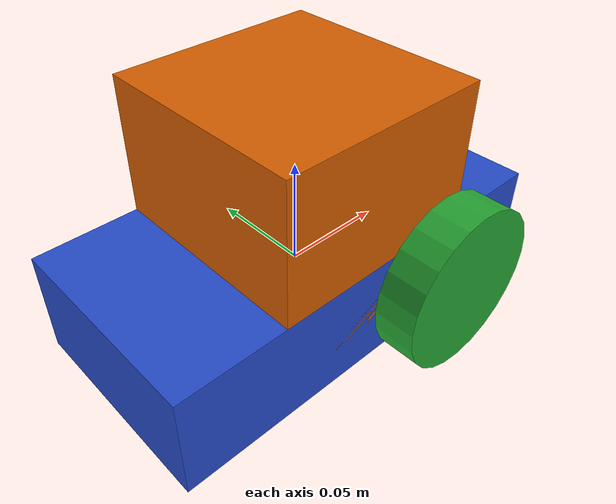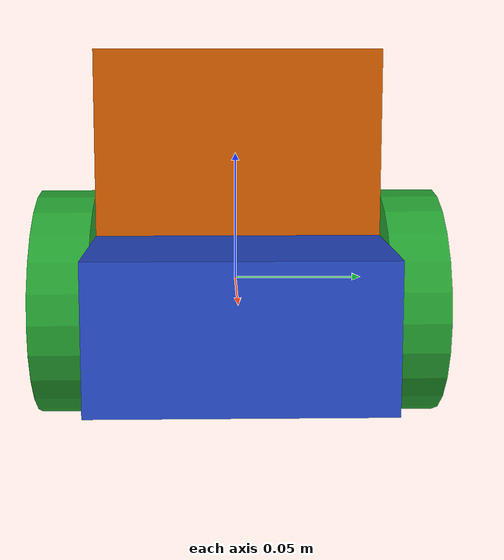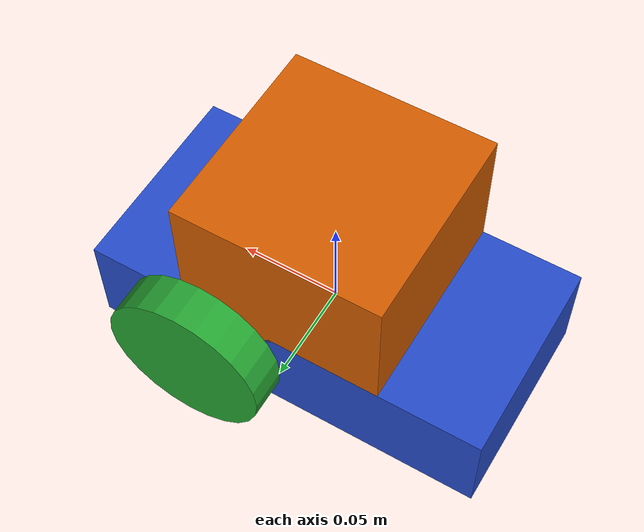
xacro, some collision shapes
<?xml version='1.0'?>

<robot name="my_robot" xmlns:xacro="http://www.ros.org/wiki/xacro">

  <xacro:include filename="$(find my_robot)/urdf/my_robot.gazebo" />

  <link name="robot_footprint"></link>

  <joint name="robot_footprint_joint" type="fixed">
    <origin xyz="0 0 0" rpy="0 0 0" />
    <parent link="robot_footprint"/>
    <child link="chassis" />
  </joint>

  <!-- CHASSIS -->
  <link name='chassis'>
    <pose>0 0 0.02 0 0 0</pose>

    <inertial>
      <mass value="15.0"/>
      <origin xyz="0.0 0 0" rpy=" 0 0 0"/>
      <inertia
          ixx="0.1" ixy="0" ixz="0"
          iyy="0.1" iyz="0"
          izz="0.1"
      />
    </inertial>

    <collision name='collision'>
      <origin xyz="0 0 0" rpy=" 0 0 0"/>
      <geometry>
        <box size="0.2 0.1 0.05"/>
      </geometry>
    </collision>

    <visual name='chassis_visual'>
      <origin xyz="0 0 0" rpy=" 0 0 0"/>
      <geometry>
        <box size="0.2 0.1 0.05"/>
      </geometry>
    </visual>

    <visual name='caster_visual'>
      <origin xyz="-0.07 0 -0.025" rpy=" 0 0 0"/>
      <geometry>
        <sphere radius="0.025"/>
      </geometry>
    </visual>

    <collision name='caster_collision'>
      <origin xyz="-0.07 0 -0.025" rpy=" 0 0 0"/>
      <geometry>
        <sphere radius="0.0249"/>
      </geometry>
    </collision>

  </link>

  <!-- LEFT WHEEL -->
  <link name='left_wheel'>
    <pose>0 0 0 0 0 0</pose>

    <inertial>
      <mass value="0.02"/>
      <origin xyz="0.0 0 0" rpy="0 1.5707 1.5707"/>
      <inertia
          ixx="0.1" ixy="0" ixz="0"
          iyy="0.1" iyz="0"
          izz="0.1"
      />
    </inertial>

    <collision name='left_wheel_collision'>
      <origin xyz="0 0 0" rpy="0 1.5707 1.5707"/>
      <geometry>
        <cylinder radius =".04" length  =".02" />
      </geometry>
    </collision>

    <visual name='left_wheel_visual'>
      <origin xyz="0 0 0" rpy="0 1.5707 1.5707"/>
      <geometry>
        <cylinder radius =".04" length  =".02" />
      </geometry>
    </visual>

  </link>

  <joint type="continuous" name="left_wheel_hinge">
    <origin xyz="0.04 0.06 0" rpy="0 0 0"/>
    <child link="left_wheel"/>
    <parent link="chassis"/>
    <axis xyz="0 1 0" rpy="0 0 0"/>
    <limit effort="10000" velocity="1000"/>
    <dynamics damping="1.0" friction="1.0"/>
  </joint>

  <!-- RIGHT WHEEL -->
  <link name='right_wheel'>
    <pose>0 0 0 0 0 0</pose>

    <inertial>
      <mass value="0.02"/>
      <origin xyz="0.0 0 0" rpy="0 1.5707 1.5707"/>
      <inertia
          ixx="0.1" ixy="0" ixz="0"
          iyy="0.1" iyz="0"
          izz="0.1"
      />
    </inertial>

    <collision name='right_wheel_collision'>
      <origin xyz="0 0 0" rpy="0 1.5707 1.5707"/>
      <geometry>
        <cylinder radius =".04" length  =".02" />
      </geometry>
    </collision>

    <visual name='right_wheel_visual'>
      <origin xyz="0 0 0" rpy="0 1.5707 1.5707"/>
      <geometry>
        <cylinder radius =".04" length  =".02" />
      </geometry>
    </visual>

  </link>

  <joint type="continuous" name="right_wheel_hinge">
    <origin xyz="0.04 -0.06 0" rpy="0 0 0"/>
    <child link="right_wheel"/>
    <parent link="chassis"/>
    <axis xyz="0 1 0" rpy="0 0 0"/>
    <limit effort="10000" velocity="1000"/>
    <dynamics damping="1.0" friction="1.0"/>
  </joint>

  <!-- CAMERA -->
  <link name='camera'>
    <pose>0 0 0 0 0 0</pose>

    <inertial>
      <mass value="0.002"/>
      <origin xyz="0.0 0 0" rpy="0 0 0"/>
      <inertia
          ixx="1e-6" ixy="0" ixz="0"
          iyy="1e-6" iyz="0"
          izz="1e-6"
      />
      <box_inertia m="0.1" x="0.05" y="0.05" z="0.05"/>
    </inertial>

    <collision name='camera_collision'>
      <origin xyz="0 0 0" rpy="0 0 0"/>
      <geometry>
        <box size=".005 .005 .005"/>
      </geometry>
    </collision>

    <visual name='camera_visual'>
      <origin xyz="0 0 0" rpy="0 0 0"/>
      <geometry>
        <box size=".005 .005 .005"/>
      </geometry>
    </visual>

  </link>

  <joint type="fixed" name="camera_joint">
    <origin xyz="0.05 0 0" rpy="0 0 0"/>
    <child link="camera"/>
    <parent link="chassis"/>
    <axis xyz="0 1 0" rpy="0 0 0"/>
  </joint>

    <!-- HOKUYO -->
  <link name='hokuyo'>
    <pose>0 0 0 0 0 0</pose>

    <inertial>
      <mass value="1e-5"/>
      <origin xyz="0.0 0 0" rpy="0 0 0"/>
      <inertia
          ixx="1e-6" ixy="0" ixz="0"
          iyy="1e-6" iyz="0"
          izz="1e-6"
      />
    </inertial>

    <collision name='hokuyo_collision'>
      <origin xyz="0 0 0" rpy="0 0 0"/>
      <geometry>
        <box size=".1 .1 .1"/>
      </geometry>
    </collision>

    <visual name='hokuyo_visual'>
      <origin xyz="0 0 0" rpy="0 0 0"/>
      <geometry>
        <mesh filename="package://my_robot/meshes/hokuyo.dae"/>
      </geometry>
    </visual>

  </link>

  <joint type="fixed" name="hokuyo_joint">
    <origin xyz="0.0 0 0.04" rpy="0 0 0"/>
    <child link="hokuyo"/>
    <parent link="chassis"/>
    <axis xyz="0 1 0" rpy="0 0 0"/>
  </joint>

  <gazebo reference="chassis">
    <material>Gazebo/Blue</material>
  </gazebo>
  <gazebo reference="left_wheel">
    <material>Gazebo/Green</material>
  </gazebo>
  <gazebo reference="right_wheel">
    <material>Gazebo/Green</material>
  </gazebo>
    <gazebo reference="camera">
    <material>Gazebo/Red</material>
  </gazebo>

</robot>
